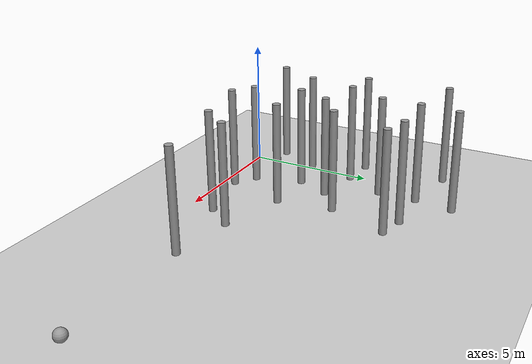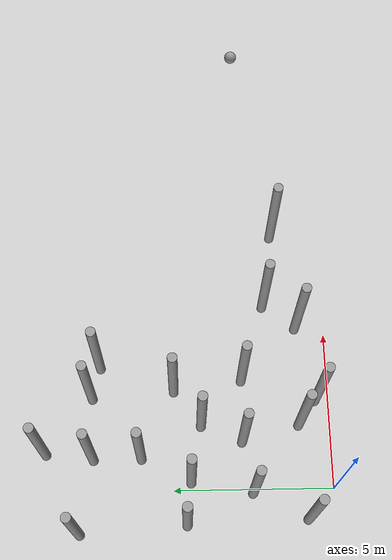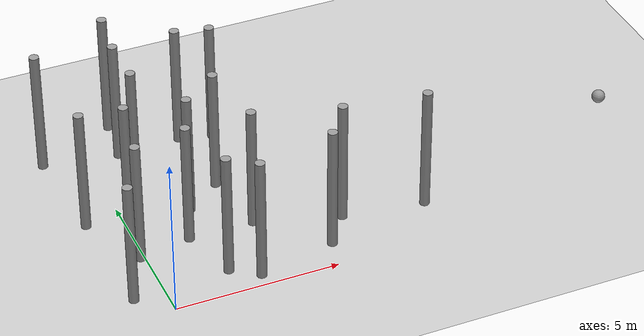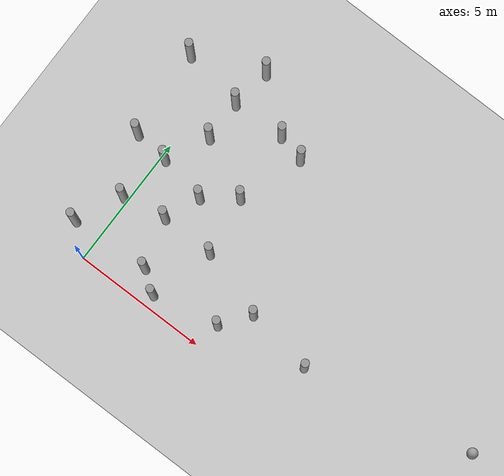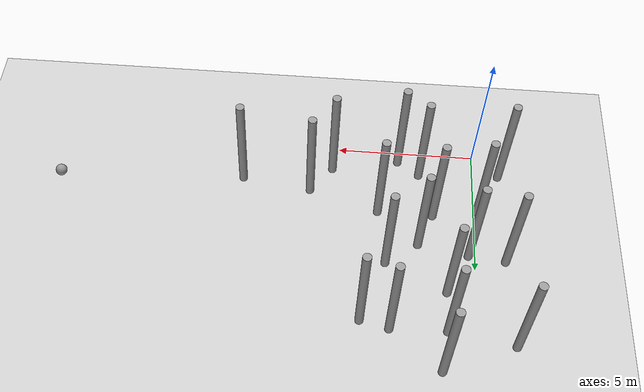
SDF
<sdf version="1.6">
 <world name="default">
  <model name="ground_plane">
   <static>1</static>
   <link name="link">
    <collision name="collision">
     <geometry><plane><normal>0 0 1</normal><size>100 100</size></plane></geometry>
     <surface><friction><ode><mu>100</mu><mu2>50</mu2></ode></friction></surface>
    </collision>
    <visual name="visual">
     <cast_shadows>0</cast_shadows>
     <geometry><plane><normal>0 0 1</normal><size>100 100</size></plane></geometry>
     <material>
      <script><uri>file://media/materials/scripts/gazebo.material</uri><name>Gazebo/Grey</name></script>
     </material>
    </visual>
   </link>
  </model>
  <model name="unit_cylinder_clone">
   <link name="link">
    <inertial>
     <mass>1000</mass>
     <inertia><ixx>145.833</ixx><ixy>0</ixy><ixz>0</ixz><iyy>145.833</iyy><iyz>0</iyz><izz>125</izz></inertia>
    </inertial>
    <visual name="visual">
     <geometry><cylinder><radius>0.15</radius><length>4</length></cylinder></geometry>
     <material>
      <script><name>Gazebo/Grey</name><uri>file://media/materials/scripts/gazebo.material</uri></script>
      <shader type="pixel"><normal_map>__default__</normal_map></shader>
      <ambient>0.3 0.3 0.3 1</ambient>
      <diffuse>0.7 0.7 0.7 1</diffuse>
      <specular>0.01 0.01 0.01 1</specular>
      <emissive>0 0 0 1</emissive>
     </material>
    </visual>
    <collision name="collision">
     <geometry><cylinder><radius>0.15</radius><length>4</length></cylinder></geometry>
     <surface>
      <friction>
       <ode><mu>1</mu><mu2>1</mu2><fdir1>0 0 0</fdir1><slip1>0</slip1><slip2>0</slip2></ode>
       <torsional>
        <coefficient>1</coefficient>
        <patch_radius>0</patch_radius>
        <surface_radius>0</surface_radius>
        <use_patch_radius>1</use_patch_radius>
        <ode><slip>0</slip></ode>
       </torsional>
      </friction>
      <bounce><restitution_coefficient>0</restitution_coefficient><threshold>1e+06</threshold></bounce>
      <contact>
       <collide_without_contact>0</collide_without_contact>
       <collide_without_contact_bitmask>1</collide_without_contact_bitmask>
       <collide_bitmask>1</collide_bitmask>
       <ode>
        <soft_cfm>0</soft_cfm>
        <soft_erp>0.2</soft_erp>
        <kp>1e+13</kp>
        <kd>1</kd>
        <max_vel>0.01</max_vel>
        <min_depth>0</min_depth>
       </ode>
       <bullet>
        <split_impulse>1</split_impulse>
        <split_impulse_penetration_threshold>-0.01</split_impulse_penetration_threshold>
        <soft_cfm>0</soft_cfm>
        <soft_erp>0.2</soft_erp>
        <kp>1e+13</kp>
        <kd>1</kd>
       </bullet>
      </contact>
     </surface>
    </collision>
   </link>
   <static>0</static>
   <pose>2.79109 0.434889 1.99999 0 0 -0.002779</pose>
  </model>
  <model name="unit_cylinder_clone_0">
   <link name="link">
    <inertial>
     <mass>1000</mass>
     <inertia><ixx>145.833</ixx><ixy>0</ixy><ixz>0</ixz><iyy>145.833</iyy><iyz>0</iyz><izz>125</izz></inertia>
    </inertial>
    <visual name="visual">
     <geometry><cylinder><radius>0.15</radius><length>4</length></cylinder></geometry>
     <material>
      <script><name>Gazebo/Grey</name><uri>file://media/materials/scripts/gazebo.material</uri></script>
      <shader type="pixel"><normal_map>__default__</normal_map></shader>
      <ambient>0.3 0.3 0.3 1</ambient>
      <diffuse>0.7 0.7 0.7 1</diffuse>
      <specular>0.01 0.01 0.01 1</specular>
      <emissive>0 0 0 1</emissive>
     </material>
    </visual>
    <collision name="collision">
     <geometry><cylinder><radius>0.15</radius><length>4</length></cylinder></geometry>
     <surface>
      <friction>
       <ode><mu>1</mu><mu2>1</mu2><fdir1>0 0 0</fdir1><slip1>0</slip1><slip2>0</slip2></ode>
       <torsional>
        <coefficient>1</coefficient>
        <patch_radius>0</patch_radius>
        <surface_radius>0</surface_radius>
        <use_patch_radius>1</use_patch_radius>
        <ode><slip>0</slip></ode>
       </torsional>
      </friction>
      <bounce><restitution_coefficient>0</restitution_coefficient><threshold>1e+06</threshold></bounce>
      <contact>
       <collide_without_contact>0</collide_without_contact>
       <collide_without_contact_bitmask>1</collide_without_contact_bitmask>
       <collide_bitmask>1</collide_bitmask>
       <ode>
        <soft_cfm>0</soft_cfm>
        <soft_erp>0.2</soft_erp>
        <kp>1e+13</kp>
        <kd>1</kd>
        <max_vel>0.01</max_vel>
        <min_depth>0</min_depth>
       </ode>
       <bullet>
        <split_impulse>1</split_impulse>
        <split_impulse_penetration_threshold>-0.01</split_impulse_penetration_threshold>
        <soft_cfm>0</soft_cfm>
        <soft_erp>0.2</soft_erp>
        <kp>1e+13</kp>
        <kd>1</kd>
       </bullet>
      </contact>
     </surface>
    </collision>
   </link>
   <static>0</static>
   <pose>-0.125925 2.52894 2 0 0 -0.002862</pose>
  </model>
  <model name="unit_cylinder_clone_1">
   <link name="link">
    <inertial>
     <mass>1000</mass>
     <inertia><ixx>145.833</ixx><ixy>0</ixy><ixz>0</ixz><iyy>145.833</iyy><iyz>0</iyz><izz>125</izz></inertia>
    </inertial>
    <visual name="visual">
     <geometry><cylinder><radius>0.15</radius><length>4</length></cylinder></geometry>
     <material>
      <script><name>Gazebo/Grey</name><uri>file://media/materials/scripts/gazebo.material</uri></script>
      <shader type="pixel"><normal_map>__default__</normal_map></shader>
      <ambient>0.3 0.3 0.3 1</ambient>
      <diffuse>0.7 0.7 0.7 1</diffuse>
      <specular>0.01 0.01 0.01 1</specular>
      <emissive>0 0 0 1</emissive>
     </material>
    </visual>
    <collision name="collision">
     <geometry><cylinder><radius>0.15</radius><length>4</length></cylinder></geometry>
     <surface>
      <friction>
       <ode><mu>1</mu><mu2>1</mu2><fdir1>0 0 0</fdir1><slip1>0</slip1><slip2>0</slip2></ode>
       <torsional>
        <coefficient>1</coefficient>
        <patch_radius>0</patch_radius>
        <surface_radius>0</surface_radius>
        <use_patch_radius>1</use_patch_radius>
        <ode><slip>0</slip></ode>
       </torsional>
      </friction>
      <bounce><restitution_coefficient>0</restitution_coefficient><threshold>1e+06</threshold></bounce>
      <contact>
       <collide_without_contact>0</collide_without_contact>
       <collide_without_contact_bitmask>1</collide_without_contact_bitmask>
       <collide_bitmask>1</collide_bitmask>
       <ode>
        <soft_cfm>0</soft_cfm>
        <soft_erp>0.2</soft_erp>
        <kp>1e+13</kp>
        <kd>1</kd>
        <max_vel>0.01</max_vel>
        <min_depth>0</min_depth>
       </ode>
       <bullet>
        <split_impulse>1</split_impulse>
        <split_impulse_penetration_threshold>-0.01</split_impulse_penetration_threshold>
        <soft_cfm>0</soft_cfm>
        <soft_erp>0.2</soft_erp>
        <kp>1e+13</kp>
        <kd>1</kd>
       </bullet>
      </contact>
     </surface>
    </collision>
   </link>
   <static>0</static>
   <pose>1.48887 2.81387 2 0 0 -0.00453</pose>
  </model>
  <model name="unit_cylinder_clone_2">
   <link name="link">
    <inertial>
     <mass>1000</mass>
     <inertia><ixx>145.833</ixx><ixy>0</ixy><ixz>0</ixz><iyy>145.833</iyy><iyz>0</iyz><izz>125</izz></inertia>
    </inertial>
    <visual name="visual">
     <geometry><cylinder><radius>0.15</radius><length>4</length></cylinder></geometry>
     <material>
      <script><name>Gazebo/Grey</name><uri>file://media/materials/scripts/gazebo.material</uri></script>
      <shader type="pixel"><normal_map>__default__</normal_map></shader>
      <ambient>0.3 0.3 0.3 1</ambient>
      <diffuse>0.7 0.7 0.7 1</diffuse>
      <specular>0.01 0.01 0.01 1</specular>
      <emissive>0 0 0 1</emissive>
     </material>
    </visual>
    <collision name="collision">
     <geometry><cylinder><radius>0.15</radius><length>4</length></cylinder></geometry>
     <surface>
      <friction>
       <ode><mu>1</mu><mu2>1</mu2><fdir1>0 0 0</fdir1><slip1>0</slip1><slip2>0</slip2></ode>
       <torsional>
        <coefficient>1</coefficient>
        <patch_radius>0</patch_radius>
        <surface_radius>0</surface_radius>
        <use_patch_radius>1</use_patch_radius>
        <ode><slip>0</slip></ode>
       </torsional>
      </friction>
      <bounce><restitution_coefficient>0</restitution_coefficient><threshold>1e+06</threshold></bounce>
      <contact>
       <collide_without_contact>0</collide_without_contact>
       <collide_without_contact_bitmask>1</collide_without_contact_bitmask>
       <collide_bitmask>1</collide_bitmask>
       <ode>
        <soft_cfm>0</soft_cfm>
        <soft_erp>0.2</soft_erp>
        <kp>1e+13</kp>
        <kd>1</kd>
        <max_vel>0.01</max_vel>
        <min_depth>0</min_depth>
       </ode>
       <bullet>
        <split_impulse>1</split_impulse>
        <split_impulse_penetration_threshold>-0.01</split_impulse_penetration_threshold>
        <soft_cfm>0</soft_cfm>
        <soft_erp>0.2</soft_erp>
        <kp>1e+13</kp>
        <kd>1</kd>
       </bullet>
      </contact>
     </surface>
    </collision>
   </link>
   <static>0</static>
   <pose>-1.07326 4.59014 2 0 0 -0.002941</pose>
  </model>
  <model name="unit_cylinder_clone_3">
   <link name="link">
    <inertial>
     <mass>1000</mass>
     <inertia><ixx>145.833</ixx><ixy>0</ixy><ixz>0</ixz><iyy>145.833</iyy><iyz>0</iyz><izz>125</izz></inertia>
    </inertial>
    <visual name="visual">
     <geometry><cylinder><radius>0.15</radius><length>4</length></cylinder></geometry>
     <material>
      <script><name>Gazebo/Grey</name><uri>file://media/materials/scripts/gazebo.material</uri></script>
      <shader type="pixel"><normal_map>__default__</normal_map></shader>
      <ambient>0.3 0.3 0.3 1</ambient>
      <diffuse>0.7 0.7 0.7 1</diffuse>
      <specular>0.01 0.01 0.01 1</specular>
      <emissive>0 0 0 1</emissive>
     </material>
    </visual>
    <collision name="collision">
     <geometry><cylinder><radius>0.15</radius><length>4</length></cylinder></geometry>
     <surface>
      <friction>
       <ode><mu>1</mu><mu2>1</mu2><fdir1>0 0 0</fdir1><slip1>0</slip1><slip2>0</slip2></ode>
       <torsional>
        <coefficient>1</coefficient>
        <patch_radius>0</patch_radius>
        <surface_radius>0</surface_radius>
        <use_patch_radius>1</use_patch_radius>
        <ode><slip>0</slip></ode>
       </torsional>
      </friction>
      <bounce><restitution_coefficient>0</restitution_coefficient><threshold>1e+06</threshold></bounce>
      <contact>
       <collide_without_contact>0</collide_without_contact>
       <collide_without_contact_bitmask>1</collide_without_contact_bitmask>
       <collide_bitmask>1</collide_bitmask>
       <ode>
        <soft_cfm>0</soft_cfm>
        <soft_erp>0.2</soft_erp>
        <kp>1e+13</kp>
        <kd>1</kd>
        <max_vel>0.01</max_vel>
        <min_depth>0</min_depth>
       </ode>
       <bullet>
        <split_impulse>1</split_impulse>
        <split_impulse_penetration_threshold>-0.01</split_impulse_penetration_threshold>
        <soft_cfm>0</soft_cfm>
        <soft_erp>0.2</soft_erp>
        <kp>1e+13</kp>
        <kd>1</kd>
       </bullet>
      </contact>
     </surface>
    </collision>
   </link>
   <static>0</static>
   <pose>1.00014 6.00017 2 0 0 -0.002932</pose>
  </model>
  <model name="unit_cylinder_clone_18">
   <link name="link">
    <inertial>
     <mass>1000</mass>
     <inertia><ixx>145.833</ixx><ixy>0</ixy><ixz>0</ixz><iyy>145.833</iyy><iyz>0</iyz><izz>125</izz></inertia>
    </inertial>
    <visual name="visual">
     <geometry><cylinder><radius>0.15</radius><length>4</length></cylinder></geometry>
     <material>
      <script><name>Gazebo/Grey</name><uri>file://media/materials/scripts/gazebo.material</uri></script>
      <shader type="pixel"><normal_map>__default__</normal_map></shader>
      <ambient>0.3 0.3 0.3 1</ambient>
      <diffuse>0.7 0.7 0.7 1</diffuse>
      <specular>0.01 0.01 0.01 1</specular>
      <emissive>0 0 0 1</emissive>
     </material>
    </visual>
    <collision name="collision">
     <geometry><cylinder><radius>0.15</radius><length>4</length></cylinder></geometry>
     <surface>
      <friction>
       <ode><mu>1</mu><mu2>1</mu2><fdir1>0 0 0</fdir1><slip1>0</slip1><slip2>0</slip2></ode>
       <torsional>
        <coefficient>1</coefficient>
        <patch_radius>0</patch_radius>
        <surface_radius>0</surface_radius>
        <use_patch_radius>1</use_patch_radius>
        <ode><slip>0</slip></ode>
       </torsional>
      </friction>
      <bounce><restitution_coefficient>0</restitution_coefficient><threshold>1e+06</threshold></bounce>
      <contact>
       <collide_without_contact>0</collide_without_contact>
       <collide_without_contact_bitmask>1</collide_without_contact_bitmask>
       <collide_bitmask>1</collide_bitmask>
       <ode>
        <soft_cfm>0</soft_cfm>
        <soft_erp>0.2</soft_erp>
        <kp>1e+13</kp>
        <kd>1</kd>
        <max_vel>0.01</max_vel>
        <min_depth>0</min_depth>
       </ode>
       <bullet>
        <split_impulse>1</split_impulse>
        <split_impulse_penetration_threshold>-0.01</split_impulse_penetration_threshold>
        <soft_cfm>0</soft_cfm>
        <soft_erp>0.2</soft_erp>
        <kp>1e+13</kp>
        <kd>1</kd>
       </bullet>
      </contact>
     </surface>
    </collision>
   </link>
   <static>0</static>
   <pose>1.18456 9.01145 1.99999 0 0 -0.002782</pose>
  </model>
  <model name="unit_cylinder_clone_20">
   <link name="link">
    <inertial>
     <mass>1000</mass>
     <inertia><ixx>145.833</ixx><ixy>0</ixy><ixz>0</ixz><iyy>145.833</iyy><iyz>0</iyz><izz>125</izz></inertia>
    </inertial>
    <visual name="visual">
     <geometry><cylinder><radius>0.15</radius><length>4</length></cylinder></geometry>
     <material>
      <script><name>Gazebo/Grey</name><uri>file://media/materials/scripts/gazebo.material</uri></script>
      <shader type="pixel"><normal_map>__default__</normal_map></shader>
      <ambient>0.3 0.3 0.3 1</ambient>
      <diffuse>0.7 0.7 0.7 1</diffuse>
      <specular>0.01 0.01 0.01 1</specular>
      <emissive>0 0 0 1</emissive>
     </material>
    </visual>
    <collision name="collision">
     <geometry><cylinder><radius>0.15</radius><length>4</length></cylinder></geometry>
     <surface>
      <friction>
       <ode><mu>1</mu><mu2>1</mu2><fdir1>0 0 0</fdir1><slip1>0</slip1><slip2>0</slip2></ode>
       <torsional>
        <coefficient>1</coefficient>
        <patch_radius>0</patch_radius>
        <surface_radius>0</surface_radius>
        <use_patch_radius>1</use_patch_radius>
        <ode><slip>0</slip></ode>
       </torsional>
      </friction>
      <bounce><restitution_coefficient>0</restitution_coefficient><threshold>1e+06</threshold></bounce>
      <contact>
       <collide_without_contact>0</collide_without_contact>
       <collide_without_contact_bitmask>1</collide_without_contact_bitmask>
       <collide_bitmask>1</collide_bitmask>
       <ode>
        <soft_cfm>0</soft_cfm>
        <soft_erp>0.2</soft_erp>
        <kp>1e+13</kp>
        <kd>1</kd>
        <max_vel>0.01</max_vel>
        <min_depth>0</min_depth>
       </ode>
       <bullet>
        <split_impulse>1</split_impulse>
        <split_impulse_penetration_threshold>-0.01</split_impulse_penetration_threshold>
        <soft_cfm>0</soft_cfm>
        <soft_erp>0.2</soft_erp>
        <kp>1e+13</kp>
        <kd>1</kd>
       </bullet>
      </contact>
     </surface>
    </collision>
   </link>
   <static>0</static>
   <pose>3.98043 7.3233 2 0 0 -0.002803</pose>
  </model>
  <model name="unit_cylinder_clone_21">
   <link name="link">
    <inertial>
     <mass>1000</mass>
     <inertia><ixx>145.833</ixx><ixy>0</ixy><ixz>0</ixz><iyy>145.833</iyy><iyz>0</iyz><izz>125</izz></inertia>
    </inertial>
    <visual name="visual">
     <geometry><cylinder><radius>0.15</radius><length>4</length></cylinder></geometry>
     <material>
      <script><name>Gazebo/Grey</name><uri>file://media/materials/scripts/gazebo.material</uri></script>
      <shader type="pixel"><normal_map>__default__</normal_map></shader>
      <ambient>0.3 0.3 0.3 1</ambient>
      <diffuse>0.7 0.7 0.7 1</diffuse>
      <specular>0.01 0.01 0.01 1</specular>
      <emissive>0 0 0 1</emissive>
     </material>
    </visual>
    <collision name="collision">
     <geometry><cylinder><radius>0.15</radius><length>4</length></cylinder></geometry>
     <surface>
      <friction>
       <ode><mu>1</mu><mu2>1</mu2><fdir1>0 0 0</fdir1><slip1>0</slip1><slip2>0</slip2></ode>
       <torsional>
        <coefficient>1</coefficient>
        <patch_radius>0</patch_radius>
        <surface_radius>0</surface_radius>
        <use_patch_radius>1</use_patch_radius>
        <ode><slip>0</slip></ode>
       </torsional>
      </friction>
      <bounce><restitution_coefficient>0</restitution_coefficient><threshold>1e+06</threshold></bounce>
      <contact>
       <collide_without_contact>0</collide_without_contact>
       <collide_without_contact_bitmask>1</collide_without_contact_bitmask>
       <collide_bitmask>1</collide_bitmask>
       <ode>
        <soft_cfm>0</soft_cfm>
        <soft_erp>0.2</soft_erp>
        <kp>1e+13</kp>
        <kd>1</kd>
        <max_vel>0.01</max_vel>
        <min_depth>0</min_depth>
       </ode>
       <bullet>
        <split_impulse>1</split_impulse>
        <split_impulse_penetration_threshold>-0.01</split_impulse_penetration_threshold>
        <soft_cfm>0</soft_cfm>
        <soft_erp>0.2</soft_erp>
        <kp>1e+13</kp>
        <kd>1</kd>
       </bullet>
      </contact>
     </surface>
    </collision>
   </link>
   <static>0</static>
   <pose>-1.30179 7.90809 2 0 0 -0.005046</pose>
  </model>
  <model name="unit_cylinder_clone_22">
   <link name="link">
    <inertial>
     <mass>1000</mass>
     <inertia><ixx>145.833</ixx><ixy>0</ixy><ixz>0</ixz><iyy>145.833</iyy><iyz>0</iyz><izz>125</izz></inertia>
    </inertial>
    <visual name="visual">
     <geometry><cylinder><radius>0.15</radius><length>4</length></cylinder></geometry>
     <material>
      <script><name>Gazebo/Grey</name><uri>file://media/materials/scripts/gazebo.material</uri></script>
      <shader type="pixel"><normal_map>__default__</normal_map></shader>
      <ambient>0.3 0.3 0.3 1</ambient>
      <diffuse>0.7 0.7 0.7 1</diffuse>
      <specular>0.01 0.01 0.01 1</specular>
      <emissive>0 0 0 1</emissive>
     </material>
    </visual>
    <collision name="collision">
     <geometry><cylinder><radius>0.15</radius><length>4</length></cylinder></geometry>
     <surface>
      <friction>
       <ode><mu>1</mu><mu2>1</mu2><fdir1>0 0 0</fdir1><slip1>0</slip1><slip2>0</slip2></ode>
       <torsional>
        <coefficient>1</coefficient>
        <patch_radius>0</patch_radius>
        <surface_radius>0</surface_radius>
        <use_patch_radius>1</use_patch_radius>
        <ode><slip>0</slip></ode>
       </torsional>
      </friction>
      <bounce><restitution_coefficient>0</restitution_coefficient><threshold>1e+06</threshold></bounce>
      <contact>
       <collide_without_contact>0</collide_without_contact>
       <collide_without_contact_bitmask>1</collide_without_contact_bitmask>
       <collide_bitmask>1</collide_bitmask>
       <ode>
        <soft_cfm>0</soft_cfm>
        <soft_erp>0.2</soft_erp>
        <kp>1e+13</kp>
        <kd>1</kd>
        <max_vel>0.01</max_vel>
        <min_depth>0</min_depth>
       </ode>
       <bullet>
        <split_impulse>1</split_impulse>
        <split_impulse_penetration_threshold>-0.01</split_impulse_penetration_threshold>
        <soft_cfm>0</soft_cfm>
        <soft_erp>0.2</soft_erp>
        <kp>1e+13</kp>
        <kd>1</kd>
       </bullet>
      </contact>
     </surface>
    </collision>
   </link>
   <static>0</static>
   <pose>0.989296 7.51338 1.99999 0 0 -0.002957</pose>
  </model>
  <model name="unit_cylinder_clone_23">
   <link name="link">
    <inertial>
     <mass>1000</mass>
     <inertia><ixx>145.833</ixx><ixy>0</ixy><ixz>0</ixz><iyy>145.833</iyy><iyz>0</iyz><izz>125</izz></inertia>
    </inertial>
    <visual name="visual">
     <geometry><cylinder><radius>0.15</radius><length>4</length></cylinder></geometry>
     <material>
      <script><name>Gazebo/Grey</name><uri>file://media/materials/scripts/gazebo.material</uri></script>
      <shader type="pixel"><normal_map>__default__</normal_map></shader>
      <ambient>0.3 0.3 0.3 1</ambient>
      <diffuse>0.7 0.7 0.7 1</diffuse>
      <specular>0.01 0.01 0.01 1</specular>
      <emissive>0 0 0 1</emissive>
     </material>
    </visual>
    <collision name="collision">
     <geometry><cylinder><radius>0.15</radius><length>4</length></cylinder></geometry>
     <surface>
      <friction>
       <ode><mu>1</mu><mu2>1</mu2><fdir1>0 0 0</fdir1><slip1>0</slip1><slip2>0</slip2></ode>
       <torsional>
        <coefficient>1</coefficient>
        <patch_radius>0</patch_radius>
        <surface_radius>0</surface_radius>
        <use_patch_radius>1</use_patch_radius>
        <ode><slip>0</slip></ode>
       </torsional>
      </friction>
      <bounce><restitution_coefficient>0</restitution_coefficient><threshold>1e+06</threshold></bounce>
      <contact>
       <collide_without_contact>0</collide_without_contact>
       <collide_without_contact_bitmask>1</collide_without_contact_bitmask>
       <collide_bitmask>1</collide_bitmask>
       <ode>
        <soft_cfm>0</soft_cfm>
        <soft_erp>0.2</soft_erp>
        <kp>1e+13</kp>
        <kd>1</kd>
        <max_vel>0.01</max_vel>
        <min_depth>0</min_depth>
       </ode>
       <bullet>
        <split_impulse>1</split_impulse>
        <split_impulse_penetration_threshold>-0.01</split_impulse_penetration_threshold>
        <soft_cfm>0</soft_cfm>
        <soft_erp>0.2</soft_erp>
        <kp>1e+13</kp>
        <kd>1</kd>
       </bullet>
      </contact>
     </surface>
    </collision>
   </link>
   <static>0</static>
   <pose>0.229124 4.44928 2 0 0 -0.003219</pose>
  </model>
  <model name="unit_cylinder_clone_24">
   <link name="link">
    <inertial>
     <mass>1000</mass>
     <inertia><ixx>145.833</ixx><ixy>0</ixy><ixz>0</ixz><iyy>145.833</iyy><iyz>0</iyz><izz>125</izz></inertia>
    </inertial>
    <visual name="visual">
     <geometry><cylinder><radius>0.15</radius><length>4</length></cylinder></geometry>
     <material>
      <script><name>Gazebo/Grey</name><uri>file://media/materials/scripts/gazebo.material</uri></script>
      <shader type="pixel"><normal_map>__default__</normal_map></shader>
      <ambient>0.3 0.3 0.3 1</ambient>
      <diffuse>0.7 0.7 0.7 1</diffuse>
      <specular>0.01 0.01 0.01 1</specular>
      <emissive>0 0 0 1</emissive>
     </material>
    </visual>
    <collision name="collision">
     <geometry><cylinder><radius>0.15</radius><length>4</length></cylinder></geometry>
     <surface>
      <friction>
       <ode><mu>1</mu><mu2>1</mu2><fdir1>0 0 0</fdir1><slip1>0</slip1><slip2>0</slip2></ode>
       <torsional>
        <coefficient>1</coefficient>
        <patch_radius>0</patch_radius>
        <surface_radius>0</surface_radius>
        <use_patch_radius>1</use_patch_radius>
        <ode><slip>0</slip></ode>
       </torsional>
      </friction>
      <bounce><restitution_coefficient>0</restitution_coefficient><threshold>1e+06</threshold></bounce>
      <contact>
       <collide_without_contact>0</collide_without_contact>
       <collide_without_contact_bitmask>1</collide_without_contact_bitmask>
       <collide_bitmask>1</collide_bitmask>
       <ode>
        <soft_cfm>0</soft_cfm>
        <soft_erp>0.2</soft_erp>
        <kp>1e+13</kp>
        <kd>1</kd>
        <max_vel>0.01</max_vel>
        <min_depth>0</min_depth>
       </ode>
       <bullet>
        <split_impulse>1</split_impulse>
        <split_impulse_penetration_threshold>-0.01</split_impulse_penetration_threshold>
        <soft_cfm>0</soft_cfm>
        <soft_erp>0.2</soft_erp>
        <kp>1e+13</kp>
        <kd>1</kd>
       </bullet>
      </contact>
     </surface>
    </collision>
   </link>
   <static>0</static>
   <pose>3.15943 4.96137 1.99999 0 0 -0.003184</pose>
  </model>
  <model name="unit_cylinder_clone_28">
   <link name="link">
    <inertial>
     <mass>1000</mass>
     <inertia><ixx>145.833</ixx><ixy>0</ixy><ixz>0</ixz><iyy>145.833</iyy><iyz>0</iyz><izz>125</izz></inertia>
    </inertial>
    <visual name="visual">
     <geometry><cylinder><radius>0.15</radius><length>4</length></cylinder></geometry>
     <material>
      <script><name>Gazebo/Grey</name><uri>file://media/materials/scripts/gazebo.material</uri></script>
      <shader type="pixel"><normal_map>__default__</normal_map></shader>
      <ambient>0.3 0.3 0.3 1</ambient>
      <diffuse>0.7 0.7 0.7 1</diffuse>
      <specular>0.01 0.01 0.01 1</specular>
      <emissive>0 0 0 1</emissive>
     </material>
    </visual>
    <collision name="collision">
     <geometry><cylinder><radius>0.15</radius><length>4</length></cylinder></geometry>
     <surface>
      <friction>
       <ode><mu>1</mu><mu2>1</mu2><fdir1>0 0 0</fdir1><slip1>0</slip1><slip2>0</slip2></ode>
       <torsional>
        <coefficient>1</coefficient>
        <patch_radius>0</patch_radius>
        <surface_radius>0</surface_radius>
        <use_patch_radius>1</use_patch_radius>
        <ode><slip>0</slip></ode>
       </torsional>
      </friction>
      <bounce><restitution_coefficient>0</restitution_coefficient><threshold>1e+06</threshold></bounce>
      <contact>
       <collide_without_contact>0</collide_without_contact>
       <collide_without_contact_bitmask>1</collide_without_contact_bitmask>
       <collide_bitmask>1</collide_bitmask>
       <ode>
        <soft_cfm>0</soft_cfm>
        <soft_erp>0.2</soft_erp>
        <kp>1e+13</kp>
        <kd>1</kd>
        <max_vel>0.01</max_vel>
        <min_depth>0</min_depth>
       </ode>
       <bullet>
        <split_impulse>1</split_impulse>
        <split_impulse_penetration_threshold>-0.01</split_impulse_penetration_threshold>
        <soft_cfm>0</soft_cfm>
        <soft_erp>0.2</soft_erp>
        <kp>1e+13</kp>
        <kd>1</kd>
       </bullet>
      </contact>
     </surface>
    </collision>
   </link>
   <static>0</static>
   <pose>2.00014 1.00017 2 0 0 -0.002793</pose>
  </model>
  <model name="unit_cylinder_clone_29">
   <link name="link">
    <inertial>
     <mass>1000</mass>
     <inertia><ixx>145.833</ixx><ixy>0</ixy><ixz>0</ixz><iyy>145.833</iyy><iyz>0</iyz><izz>125</izz></inertia>
    </inertial>
    <visual name="visual">
     <geometry><cylinder><radius>0.15</radius><length>4</length></cylinder></geometry>
     <material>
      <script><name>Gazebo/Grey</name><uri>file://media/materials/scripts/gazebo.material</uri></script>
      <shader type="pixel"><normal_map>__default__</normal_map></shader>
      <ambient>0.3 0.3 0.3 1</ambient>
      <diffuse>0.7 0.7 0.7 1</diffuse>
      <specular>0.01 0.01 0.01 1</specular>
      <emissive>0 0 0 1</emissive>
     </material>
    </visual>
    <collision name="collision">
     <geometry><cylinder><radius>0.15</radius><length>4</length></cylinder></geometry>
     <surface>
      <friction>
       <ode><mu>1</mu><mu2>1</mu2><fdir1>0 0 0</fdir1><slip1>0</slip1><slip2>0</slip2></ode>
       <torsional>
        <coefficient>1</coefficient>
        <patch_radius>0</patch_radius>
        <surface_radius>0</surface_radius>
        <use_patch_radius>1</use_patch_radius>
        <ode><slip>0</slip></ode>
       </torsional>
      </friction>
      <bounce><restitution_coefficient>0</restitution_coefficient><threshold>1e+06</threshold></bounce>
      <contact>
       <collide_without_contact>0</collide_without_contact>
       <collide_without_contact_bitmask>1</collide_without_contact_bitmask>
       <collide_bitmask>1</collide_bitmask>
       <ode>
        <soft_cfm>0</soft_cfm>
        <soft_erp>0.2</soft_erp>
        <kp>1e+13</kp>
        <kd>1</kd>
        <max_vel>0.01</max_vel>
        <min_depth>0</min_depth>
       </ode>
       <bullet>
        <split_impulse>1</split_impulse>
        <split_impulse_penetration_threshold>-0.01</split_impulse_penetration_threshold>
        <soft_cfm>0</soft_cfm>
        <soft_erp>0.2</soft_erp>
        <kp>1e+13</kp>
        <kd>1</kd>
       </bullet>
      </contact>
     </surface>
    </collision>
   </link>
   <static>0</static>
   <pose>6.00013 2.00017 2 0 0 -0.002746</pose>
  </model>
  <model name="unit_cylinder_clone_30">
   <link name="link">
    <inertial>
     <mass>1000</mass>
     <inertia><ixx>145.833</ixx><ixy>0</ixy><ixz>0</ixz><iyy>145.833</iyy><iyz>0</iyz><izz>125</izz></inertia>
    </inertial>
    <visual name="visual">
     <geometry><cylinder><radius>0.15</radius><length>4</length></cylinder></geometry>
     <material>
      <script><name>Gazebo/Grey</name><uri>file://media/materials/scripts/gazebo.material</uri></script>
      <shader type="pixel"><normal_map>__default__</normal_map></shader>
      <ambient>0.3 0.3 0.3 1</ambient>
      <diffuse>0.7 0.7 0.7 1</diffuse>
      <specular>0.01 0.01 0.01 1</specular>
      <emissive>0 0 0 1</emissive>
     </material>
    </visual>
    <collision name="collision">
     <geometry><cylinder><radius>0.15</radius><length>4</length></cylinder></geometry>
     <surface>
      <friction>
       <ode><mu>1</mu><mu2>1</mu2><fdir1>0 0 0</fdir1><slip1>0</slip1><slip2>0</slip2></ode>
       <torsional>
        <coefficient>1</coefficient>
        <patch_radius>0</patch_radius>
        <surface_radius>0</surface_radius>
        <use_patch_radius>1</use_patch_radius>
        <ode><slip>0</slip></ode>
       </torsional>
      </friction>
      <bounce><restitution_coefficient>0</restitution_coefficient><threshold>1e+06</threshold></bounce>
      <contact>
       <collide_without_contact>0</collide_without_contact>
       <collide_without_contact_bitmask>1</collide_without_contact_bitmask>
       <collide_bitmask>1</collide_bitmask>
       <ode>
        <soft_cfm>0</soft_cfm>
        <soft_erp>0.2</soft_erp>
        <kp>1e+13</kp>
        <kd>1</kd>
        <max_vel>0.01</max_vel>
        <min_depth>0</min_depth>
       </ode>
       <bullet>
        <split_impulse>1</split_impulse>
        <split_impulse_penetration_threshold>-0.01</split_impulse_penetration_threshold>
        <soft_cfm>0</soft_cfm>
        <soft_erp>0.2</soft_erp>
        <kp>1e+13</kp>
        <kd>1</kd>
       </bullet>
      </contact>
     </surface>
    </collision>
   </link>
   <static>0</static>
   <pose>5.22454 0.959651 2 0 0 -0.002782</pose>
  </model>
  <model name="unit_cylinder_clone_35">
   <link name="link">
    <inertial>
     <mass>1000</mass>
     <inertia><ixx>145.833</ixx><ixy>0</ixy><ixz>0</ixz><iyy>145.833</iyy><iyz>0</iyz><izz>125</izz></inertia>
    </inertial>
    <visual name="visual">
     <geometry><cylinder><radius>0.15</radius><length>4</length></cylinder></geometry>
     <material>
      <script><name>Gazebo/Grey</name><uri>file://media/materials/scripts/gazebo.material</uri></script>
      <shader type="pixel"><normal_map>__default__</normal_map></shader>
      <ambient>0.3 0.3 0.3 1</ambient>
      <diffuse>0.7 0.7 0.7 1</diffuse>
      <specular>0.01 0.01 0.01 1</specular>
      <emissive>0 0 0 1</emissive>
     </material>
    </visual>
    <collision name="collision">
     <geometry><cylinder><radius>0.15</radius><length>4</length></cylinder></geometry>
     <surface>
      <friction>
       <ode><mu>1</mu><mu2>1</mu2><fdir1>0 0 0</fdir1><slip1>0</slip1><slip2>0</slip2></ode>
       <torsional>
        <coefficient>1</coefficient>
        <patch_radius>0</patch_radius>
        <surface_radius>0</surface_radius>
        <use_patch_radius>1</use_patch_radius>
        <ode><slip>0</slip></ode>
       </torsional>
      </friction>
      <bounce><restitution_coefficient>0</restitution_coefficient><threshold>1e+06</threshold></bounce>
      <contact>
       <collide_without_contact>0</collide_without_contact>
       <collide_without_contact_bitmask>1</collide_without_contact_bitmask>
       <collide_bitmask>1</collide_bitmask>
       <ode>
        <soft_cfm>0</soft_cfm>
        <soft_erp>0.2</soft_erp>
        <kp>1e+13</kp>
        <kd>1</kd>
        <max_vel>0.01</max_vel>
        <min_depth>0</min_depth>
       </ode>
       <bullet>
        <split_impulse>1</split_impulse>
        <split_impulse_penetration_threshold>-0.01</split_impulse_penetration_threshold>
        <soft_cfm>0</soft_cfm>
        <soft_erp>0.2</soft_erp>
        <kp>1e+13</kp>
        <kd>1</kd>
       </bullet>
      </contact>
     </surface>
    </collision>
   </link>
   <static>0</static>
   <pose>8.50978 1.63079 1.99999 0 0 -0.002737</pose>
  </model>
  <model name="unit_cylinder_clone_37">
   <link name="link">
    <inertial>
     <mass>1000</mass>
     <inertia><ixx>145.833</ixx><ixy>0</ixy><ixz>0</ixz><iyy>145.833</iyy><iyz>0</iyz><izz>125</izz></inertia>
    </inertial>
    <visual name="visual">
     <geometry><cylinder><radius>0.15</radius><length>4</length></cylinder></geometry>
     <material>
      <script><name>Gazebo/Grey</name><uri>file://media/materials/scripts/gazebo.material</uri></script>
      <shader type="pixel"><normal_map>__default__</normal_map></shader>
      <ambient>0.3 0.3 0.3 1</ambient>
      <diffuse>0.7 0.7 0.7 1</diffuse>
      <specular>0.01 0.01 0.01 1</specular>
      <emissive>0 0 0 1</emissive>
     </material>
    </visual>
    <collision name="collision">
     <geometry><cylinder><radius>0.15</radius><length>4</length></cylinder></geometry>
     <surface>
      <friction>
       <ode><mu>1</mu><mu2>1</mu2><fdir1>0 0 0</fdir1><slip1>0</slip1><slip2>0</slip2></ode>
       <torsional>
        <coefficient>1</coefficient>
        <patch_radius>0</patch_radius>
        <surface_radius>0</surface_radius>
        <use_patch_radius>1</use_patch_radius>
        <ode><slip>0</slip></ode>
       </torsional>
      </friction>
      <bounce><restitution_coefficient>0</restitution_coefficient><threshold>1e+06</threshold></bounce>
      <contact>
       <collide_without_contact>0</collide_without_contact>
       <collide_without_contact_bitmask>1</collide_without_contact_bitmask>
       <collide_bitmask>1</collide_bitmask>
       <ode>
        <soft_cfm>0</soft_cfm>
        <soft_erp>0.2</soft_erp>
        <kp>1e+13</kp>
        <kd>1</kd>
        <max_vel>0.01</max_vel>
        <min_depth>0</min_depth>
       </ode>
       <bullet>
        <split_impulse>1</split_impulse>
        <split_impulse_penetration_threshold>-0.01</split_impulse_penetration_threshold>
        <soft_cfm>0</soft_cfm>
        <soft_erp>0.2</soft_erp>
        <kp>1e+13</kp>
        <kd>1</kd>
       </bullet>
      </contact>
     </surface>
    </collision>
   </link>
   <static>0</static>
   <pose>3.48264 2.78647 2 0 0 -0.002818</pose>
  </model>
  <model name="unit_cylinder_clone_21_clone">
   <link name="link">
    <inertial>
     <mass>1000</mass>
     <inertia><ixx>145.833</ixx><ixy>0</ixy><ixz>0</ixz><iyy>145.833</iyy><iyz>0</iyz><izz>125</izz></inertia>
    </inertial>
    <visual name="visual">
     <geometry><cylinder><radius>0.15</radius><length>4</length></cylinder></geometry>
     <material>
      <script><name>Gazebo/Grey</name><uri>file://media/materials/scripts/gazebo.material</uri></script>
      <shader type="pixel"><normal_map>__default__</normal_map></shader>
      <ambient>0.3 0.3 0.3 1</ambient>
      <diffuse>0.7 0.7 0.7 1</diffuse>
      <specular>0.01 0.01 0.01 1</specular>
      <emissive>0 0 0 1</emissive>
     </material>
    </visual>
    <collision name="collision">
     <geometry><cylinder><radius>0.15</radius><length>4</length></cylinder></geometry>
     <surface>
      <friction>
       <ode><mu>1</mu><mu2>1</mu2><fdir1>0 0 0</fdir1><slip1>0</slip1><slip2>0</slip2></ode>
       <torsional>
        <coefficient>1</coefficient>
        <patch_radius>0</patch_radius>
        <surface_radius>0</surface_radius>
        <use_patch_radius>1</use_patch_radius>
        <ode><slip>0</slip></ode>
       </torsional>
      </friction>
      <bounce><restitution_coefficient>0</restitution_coefficient><threshold>1e+06</threshold></bounce>
      <contact>
       <collide_without_contact>0</collide_without_contact>
       <collide_without_contact_bitmask>1</collide_without_contact_bitmask>
       <collide_bitmask>1</collide_bitmask>
       <ode>
        <soft_cfm>0</soft_cfm>
        <soft_erp>0.2</soft_erp>
        <kp>1e+13</kp>
        <kd>1</kd>
        <max_vel>0.01</max_vel>
        <min_depth>0</min_depth>
       </ode>
       <bullet>
        <split_impulse>1</split_impulse>
        <split_impulse_penetration_threshold>-0.01</split_impulse_penetration_threshold>
        <soft_cfm>0</soft_cfm>
        <soft_erp>0.2</soft_erp>
        <kp>1e+13</kp>
        <kd>1</kd>
       </bullet>
      </contact>
     </surface>
    </collision>
   </link>
   <static>0</static>
   <pose>2.96549 7.57198 1.99999 0 0 -0.002708</pose>
  </model>
  <model name="unit_sphere">
   <link name="link">
    <inertial>
     <mass>1</mass>
     <inertia><ixx>0.1</ixx><ixy>0</ixy><ixz>0</ixz><iyy>0.1</iyy><iyz>0</iyz><izz>0.1</izz></inertia>
    </inertial>
    <gravity>0</gravity>
    <visual name="visual">
     <geometry><sphere><radius>0.203941</radius></sphere></geometry>
     <material>
      <script><name>Gazebo/Grey</name><uri>file://media/materials/scripts/gazebo.material</uri></script>
      <shader type="pixel"><normal_map>__default__</normal_map></shader>
     </material>
    </visual>
    <collision name="collision">
     <geometry><sphere><radius>0.203941</radius></sphere></geometry>
     <surface>
      <friction>
       <ode><mu>1</mu><mu2>1</mu2><fdir1>0 0 0</fdir1><slip1>0</slip1><slip2>0</slip2></ode>
       <torsional>
        <coefficient>1</coefficient>
        <patch_radius>0</patch_radius>
        <surface_radius>0</surface_radius>
        <use_patch_radius>1</use_patch_radius>
        <ode><slip>0</slip></ode>
       </torsional>
      </friction>
      <bounce><restitution_coefficient>0</restitution_coefficient><threshold>1e+06</threshold></bounce>
      <contact>
       <collide_without_contact>0</collide_without_contact>
       <collide_without_contact_bitmask>1</collide_without_contact_bitmask>
       <collide_bitmask>1</collide_bitmask>
       <ode>
        <soft_cfm>0</soft_cfm>
        <soft_erp>0.2</soft_erp>
        <kp>1e+13</kp>
        <kd>1</kd>
        <max_vel>0.01</max_vel>
        <min_depth>0</min_depth>
       </ode>
       <bullet>
        <split_impulse>1</split_impulse>
        <split_impulse_penetration_threshold>-0.01</split_impulse_penetration_threshold>
        <soft_cfm>0</soft_cfm>
        <soft_erp>0.2</soft_erp>
        <kp>1e+13</kp>
        <kd>1</kd>
       </bullet>
      </contact>
     </surface>
    </collision>
   </link>
   <static>0</static>
   <pose>14.9329 2.79253 1.32632 0 -0 0</pose>
  </model>
  <model name="unit_cylinder_clone_44_clone_0">
   <link name="link">
    <inertial>
     <mass>1000</mass>
     <inertia><ixx>145.833</ixx><ixy>0</ixy><ixz>0</ixz><iyy>145.833</iyy><iyz>0</iyz><izz>125</izz></inertia>
    </inertial>
    <visual name="visual">
     <geometry><cylinder><radius>0.15</radius><length>4</length></cylinder></geometry>
     <material>
      <script><name>Gazebo/Grey</name><uri>file://media/materials/scripts/gazebo.material</uri></script>
      <shader type="pixel"><normal_map>__default__</normal_map></shader>
      <ambient>0.3 0.3 0.3 1</ambient>
      <diffuse>0.7 0.7 0.7 1</diffuse>
      <specular>0.01 0.01 0.01 1</specular>
      <emissive>0 0 0 1</emissive>
     </material>
    </visual>
    <collision name="collision">
     <geometry><cylinder><radius>0.15</radius><length>4</length></cylinder></geometry>
     <surface>
      <friction>
       <ode><mu>1</mu><mu2>1</mu2><fdir1>0 0 0</fdir1><slip1>0</slip1><slip2>0</slip2></ode>
       <torsional>
        <coefficient>1</coefficient>
        <patch_radius>0</patch_radius>
        <surface_radius>0</surface_radius>
        <use_patch_radius>1</use_patch_radius>
        <ode><slip>0</slip></ode>
       </torsional>
      </friction>
      <bounce><restitution_coefficient>0</restitution_coefficient><threshold>1e+06</threshold></bounce>
      <contact>
       <collide_without_contact>0</collide_without_contact>
       <collide_without_contact_bitmask>1</collide_without_contact_bitmask>
       <collide_bitmask>1</collide_bitmask>
       <ode>
        <soft_cfm>0</soft_cfm>
        <soft_erp>0.2</soft_erp>
        <kp>1e+13</kp>
        <kd>1</kd>
        <max_vel>0.01</max_vel>
        <min_depth>0</min_depth>
       </ode>
       <bullet>
        <split_impulse>1</split_impulse>
        <split_impulse_penetration_threshold>-0.01</split_impulse_penetration_threshold>
        <soft_cfm>0</soft_cfm>
        <soft_erp>0.2</soft_erp>
        <kp>1e+13</kp>
        <kd>1</kd>
       </bullet>
      </contact>
     </surface>
    </collision>
   </link>
   <static>0</static>
   <pose>-0.948716 0.847803 1.99999 0 0 -0.002437</pose>
  </model>
  <model name="unit_cylinder_clone_44_clone_3">
   <link name="link">
    <inertial>
     <mass>1000</mass>
     <inertia><ixx>145.833</ixx><ixy>0</ixy><ixz>0</ixz><iyy>145.833</iyy><iyz>0</iyz><izz>125</izz></inertia>
    </inertial>
    <visual name="visual">
     <geometry><cylinder><radius>0.15</radius><length>4</length></cylinder></geometry>
     <material>
      <script><name>Gazebo/Grey</name><uri>file://media/materials/scripts/gazebo.material</uri></script>
      <shader type="pixel"><normal_map>__default__</normal_map></shader>
      <ambient>0.3 0.3 0.3 1</ambient>
      <diffuse>0.7 0.7 0.7 1</diffuse>
      <specular>0.01 0.01 0.01 1</specular>
      <emissive>0 0 0 1</emissive>
     </material>
    </visual>
    <collision name="collision">
     <geometry><cylinder><radius>0.15</radius><length>4</length></cylinder></geometry>
     <surface>
      <friction>
       <ode><mu>1</mu><mu2>1</mu2><fdir1>0 0 0</fdir1><slip1>0</slip1><slip2>0</slip2></ode>
       <torsional>
        <coefficient>1</coefficient>
        <patch_radius>0</patch_radius>
        <surface_radius>0</surface_radius>
        <use_patch_radius>1</use_patch_radius>
        <ode><slip>0</slip></ode>
       </torsional>
      </friction>
      <bounce><restitution_coefficient>0</restitution_coefficient><threshold>1e+06</threshold></bounce>
      <contact>
       <collide_without_contact>0</collide_without_contact>
       <collide_without_contact_bitmask>1</collide_without_contact_bitmask>
       <collide_bitmask>1</collide_bitmask>
       <ode>
        <soft_cfm>0</soft_cfm>
        <soft_erp>0.2</soft_erp>
        <kp>1e+13</kp>
        <kd>1</kd>
        <max_vel>0.01</max_vel>
        <min_depth>0</min_depth>
       </ode>
       <bullet>
        <split_impulse>1</split_impulse>
        <split_impulse_penetration_threshold>-0.01</split_impulse_penetration_threshold>
        <soft_cfm>0</soft_cfm>
        <soft_erp>0.2</soft_erp>
        <kp>1e+13</kp>
        <kd>1</kd>
       </bullet>
      </contact>
     </surface>
    </collision>
   </link>
   <static>0</static>
   <pose>2.01415 4.10632 1.99999 0 0 -0.001353</pose>
  </model>
 </world>
</sdf>
